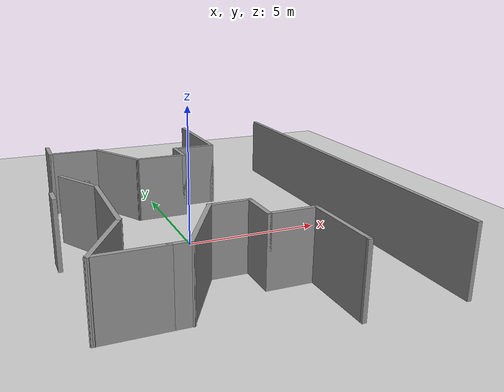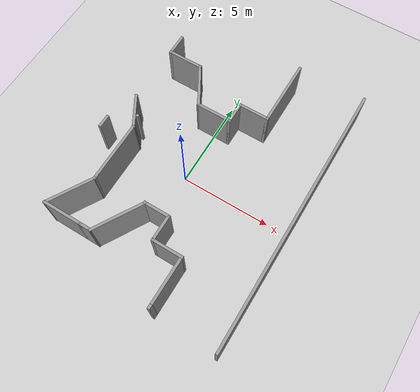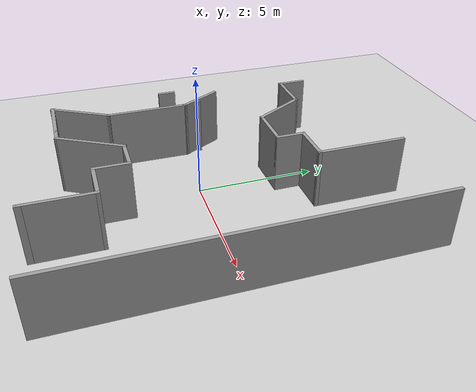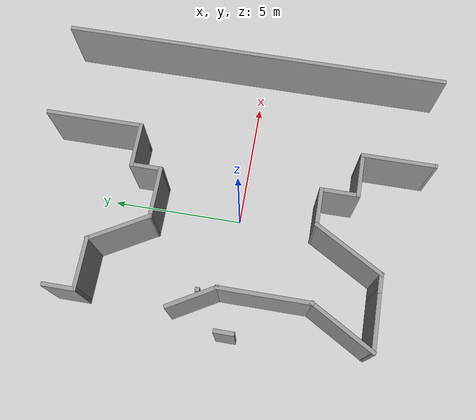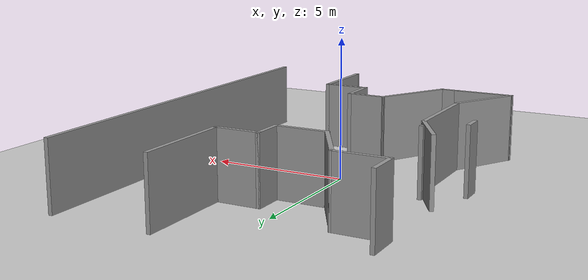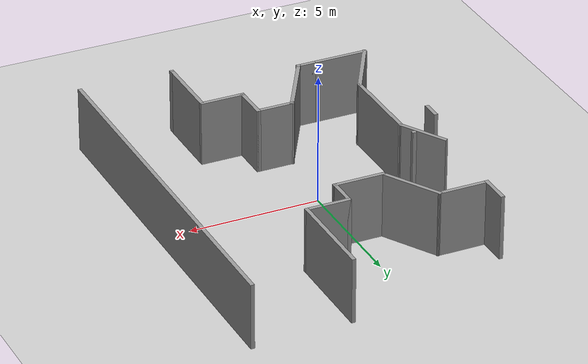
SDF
<sdf version="1.7">
 <world name="default">
  <model name="ground_plane">
   <static>1</static>
   <link name="link">
    <collision name="collision">
     <geometry><plane><normal>0 0 1</normal><size>100 100</size></plane></geometry>
     <surface>
      <contact><collide_bitmask>65535</collide_bitmask></contact>
      <friction><ode><mu>100</mu><mu2>50</mu2></ode></friction>
     </surface>
    </collision>
    <visual name="visual">
     <cast_shadows>0</cast_shadows>
     <geometry><plane><normal>0 0 1</normal><size>100 100</size></plane></geometry>
     <material>
      <script><uri>file://media/materials/scripts/gazebo.material</uri><name>Gazebo/Grey</name></script>
     </material>
    </visual>
   </link>
  </model>
  <model name="cubot">
   <link name="Wall_123">
    <pose>13.925 -0.04968 0 0 0 -1.5708</pose>
    <visual name="Wall_123_Visual">
     <pose>0 0 1.25 0 -0 0</pose>
     <geometry><box><size>15 0.15 2.5</size></box></geometry>
     <material>
      <script><uri>file://media/materials/scripts/gazebo.material</uri><name>Gazebo/Grey</name></script>
      <ambient>1 1 1 1</ambient>
      <shader type="pixel"/>
     </material>
     <meta><layer>0</layer></meta>
    </visual>
    <collision name="Wall_123_Collision">
     <pose>0 0 1.25 0 -0 0</pose>
     <geometry><box><size>15 0.15 2.5</size></box></geometry>
     <surface>
      <friction>
       <ode><mu>1</mu><mu2>1</mu2><fdir1>0 0 0</fdir1><slip1>0</slip1><slip2>0</slip2></ode>
       <torsional>
        <coefficient>1</coefficient>
        <patch_radius>0</patch_radius>
        <surface_radius>0</surface_radius>
        <use_patch_radius>1</use_patch_radius>
        <ode><slip>0</slip></ode>
       </torsional>
      </friction>
      <bounce><restitution_coefficient>0</restitution_coefficient><threshold>1e+06</threshold></bounce>
      <contact>
       <collide_without_contact>0</collide_without_contact>
       <collide_without_contact_bitmask>1</collide_without_contact_bitmask>
       <collide_bitmask>1</collide_bitmask>
       <ode>
        <soft_cfm>0</soft_cfm>
        <soft_erp>0.2</soft_erp>
        <kp>1e+13</kp>
        <kd>1</kd>
        <max_vel>0.01</max_vel>
        <min_depth>0</min_depth>
       </ode>
       <bullet>
        <split_impulse>1</split_impulse>
        <split_impulse_penetration_threshold>-0.01</split_impulse_penetration_threshold>
        <soft_cfm>0</soft_cfm>
        <soft_erp>0.2</soft_erp>
        <kp>1e+13</kp>
        <kd>1</kd>
       </bullet>
      </contact>
     </surface>
    </collision>
   </link>
   <link name="Wall_158">
    <pose>3.68935 5.22468 0 0 0 -1.5708</pose>
    <visual name="Wall_158_Visual">
     <pose>0 0 1.25 0 -0 0</pose>
     <geometry><box><size>1.25 0.15 2.5</size></box></geometry>
     <material>
      <script><uri>file://media/materials/scripts/gazebo.material</uri><name>Gazebo/Grey</name></script>
      <ambient>1 1 1 1</ambient>
      <shader type="pixel"/>
     </material>
     <meta><layer>0</layer></meta>
    </visual>
    <collision name="Wall_158_Collision">
     <pose>0 0 1.25 0 -0 0</pose>
     <geometry><box><size>1.25 0.15 2.5</size></box></geometry>
     <surface>
      <friction>
       <ode><mu>1</mu><mu2>1</mu2><fdir1>0 0 0</fdir1><slip1>0</slip1><slip2>0</slip2></ode>
       <torsional>
        <coefficient>1</coefficient>
        <patch_radius>0</patch_radius>
        <surface_radius>0</surface_radius>
        <use_patch_radius>1</use_patch_radius>
        <ode><slip>0</slip></ode>
       </torsional>
      </friction>
      <bounce><restitution_coefficient>0</restitution_coefficient><threshold>1e+06</threshold></bounce>
      <contact>
       <collide_without_contact>0</collide_without_contact>
       <collide_without_contact_bitmask>1</collide_without_contact_bitmask>
       <collide_bitmask>1</collide_bitmask>
       <ode>
        <soft_cfm>0</soft_cfm>
        <soft_erp>0.2</soft_erp>
        <kp>1e+13</kp>
        <kd>1</kd>
        <max_vel>0.01</max_vel>
        <min_depth>0</min_depth>
       </ode>
       <bullet>
        <split_impulse>1</split_impulse>
        <split_impulse_penetration_threshold>-0.01</split_impulse_penetration_threshold>
        <soft_cfm>0</soft_cfm>
        <soft_erp>0.2</soft_erp>
        <kp>1e+13</kp>
        <kd>1</kd>
       </bullet>
      </contact>
     </surface>
    </collision>
   </link>
   <link name="Wall_159">
    <pose>4.61435 4.67468 0 0 -0 0</pose>
    <visual name="Wall_159_Visual">
     <pose>0 0 1.25 0 -0 0</pose>
     <geometry><box><size>2 0.15 2.5</size></box></geometry>
     <material>
      <script><uri>file://media/materials/scripts/gazebo.material</uri><name>Gazebo/Grey</name></script>
      <ambient>1 1 1 1</ambient>
      <shader type="pixel"/>
     </material>
     <meta><layer>0</layer></meta>
    </visual>
    <collision name="Wall_159_Collision">
     <pose>0 0 1.25 0 -0 0</pose>
     <geometry><box><size>2 0.15 2.5</size></box></geometry>
     <surface>
      <friction>
       <ode><mu>1</mu><mu2>1</mu2><fdir1>0 0 0</fdir1><slip1>0</slip1><slip2>0</slip2></ode>
       <torsional>
        <coefficient>1</coefficient>
        <patch_radius>0</patch_radius>
        <surface_radius>0</surface_radius>
        <use_patch_radius>1</use_patch_radius>
        <ode><slip>0</slip></ode>
       </torsional>
      </friction>
      <bounce><restitution_coefficient>0</restitution_coefficient><threshold>1e+06</threshold></bounce>
      <contact>
       <collide_without_contact>0</collide_without_contact>
       <collide_without_contact_bitmask>1</collide_without_contact_bitmask>
       <collide_bitmask>1</collide_bitmask>
       <ode>
        <soft_cfm>0</soft_cfm>
        <soft_erp>0.2</soft_erp>
        <kp>1e+13</kp>
        <kd>1</kd>
        <max_vel>0.01</max_vel>
        <min_depth>0</min_depth>
       </ode>
       <bullet>
        <split_impulse>1</split_impulse>
        <split_impulse_penetration_threshold>-0.01</split_impulse_penetration_threshold>
        <soft_cfm>0</soft_cfm>
        <soft_erp>0.2</soft_erp>
        <kp>1e+13</kp>
        <kd>1</kd>
       </bullet>
      </contact>
     </surface>
    </collision>
   </link>
   <link name="Wall_160">
    <pose>6.12685 3.6571 0 0 0 -1.0472</pose>
    <visual name="Wall_160_Visual">
     <pose>0 0 1.25 0 -0 0</pose>
     <geometry><box><size>2.5 0.15 2.5</size></box></geometry>
     <material>
      <script><uri>file://media/materials/scripts/gazebo.material</uri><name>Gazebo/Grey</name></script>
      <ambient>1 1 1 1</ambient>
      <shader type="pixel"/>
     </material>
     <meta><layer>0</layer></meta>
    </visual>
    <collision name="Wall_160_Collision">
     <pose>0 0 1.25 0 -0 0</pose>
     <geometry><box><size>2.5 0.15 2.5</size></box></geometry>
     <surface>
      <friction>
       <ode><mu>1</mu><mu2>1</mu2><fdir1>0 0 0</fdir1><slip1>0</slip1><slip2>0</slip2></ode>
       <torsional>
        <coefficient>1</coefficient>
        <patch_radius>0</patch_radius>
        <surface_radius>0</surface_radius>
        <use_patch_radius>1</use_patch_radius>
        <ode><slip>0</slip></ode>
       </torsional>
      </friction>
      <bounce><restitution_coefficient>0</restitution_coefficient><threshold>1e+06</threshold></bounce>
      <contact>
       <collide_without_contact>0</collide_without_contact>
       <collide_without_contact_bitmask>1</collide_without_contact_bitmask>
       <collide_bitmask>1</collide_bitmask>
       <ode>
        <soft_cfm>0</soft_cfm>
        <soft_erp>0.2</soft_erp>
        <kp>1e+13</kp>
        <kd>1</kd>
        <max_vel>0.01</max_vel>
        <min_depth>0</min_depth>
       </ode>
       <bullet>
        <split_impulse>1</split_impulse>
        <split_impulse_penetration_threshold>-0.01</split_impulse_penetration_threshold>
        <soft_cfm>0</soft_cfm>
        <soft_erp>0.2</soft_erp>
        <kp>1e+13</kp>
        <kd>1</kd>
       </bullet>
      </contact>
     </surface>
    </collision>
   </link>
   <link name="Wall_161">
    <pose>7.63935 2.63952 0 0 -0 0</pose>
    <visual name="Wall_161_Visual">
     <pose>0 0 1.25 0 -0 0</pose>
     <geometry><box><size>2 0.15 2.5</size></box></geometry>
     <material>
      <script><uri>file://media/materials/scripts/gazebo.material</uri><name>Gazebo/Grey</name></script>
      <ambient>1 1 1 1</ambient>
      <shader type="pixel"/>
     </material>
     <meta><layer>0</layer></meta>
    </visual>
    <collision name="Wall_161_Collision">
     <pose>0 0 1.25 0 -0 0</pose>
     <geometry><box><size>2 0.15 2.5</size></box></geometry>
     <surface>
      <friction>
       <ode><mu>1</mu><mu2>1</mu2><fdir1>0 0 0</fdir1><slip1>0</slip1><slip2>0</slip2></ode>
       <torsional>
        <coefficient>1</coefficient>
        <patch_radius>0</patch_radius>
        <surface_radius>0</surface_radius>
        <use_patch_radius>1</use_patch_radius>
        <ode><slip>0</slip></ode>
       </torsional>
      </friction>
      <bounce><restitution_coefficient>0</restitution_coefficient><threshold>1e+06</threshold></bounce>
      <contact>
       <collide_without_contact>0</collide_without_contact>
       <collide_without_contact_bitmask>1</collide_without_contact_bitmask>
       <collide_bitmask>1</collide_bitmask>
       <ode>
        <soft_cfm>0</soft_cfm>
        <soft_erp>0.2</soft_erp>
        <kp>1e+13</kp>
        <kd>1</kd>
        <max_vel>0.01</max_vel>
        <min_depth>0</min_depth>
       </ode>
       <bullet>
        <split_impulse>1</split_impulse>
        <split_impulse_penetration_threshold>-0.01</split_impulse_penetration_threshold>
        <soft_cfm>0</soft_cfm>
        <soft_erp>0.2</soft_erp>
        <kp>1e+13</kp>
        <kd>1</kd>
       </bullet>
      </contact>
     </surface>
    </collision>
   </link>
   <link name="Wall_162">
    <pose>8.56435 3.18952 0 0 -0 1.5708</pose>
    <visual name="Wall_162_Visual">
     <pose>0 0 1.25 0 -0 0</pose>
     <geometry><box><size>1.25 0.15 2.5</size></box></geometry>
     <material>
      <script><uri>file://media/materials/scripts/gazebo.material</uri><name>Gazebo/Grey</name></script>
      <ambient>1 1 1 1</ambient>
      <shader type="pixel"/>
     </material>
     <meta><layer>0</layer></meta>
    </visual>
    <collision name="Wall_162_Collision">
     <pose>0 0 1.25 0 -0 0</pose>
     <geometry><box><size>1.25 0.15 2.5</size></box></geometry>
     <surface>
      <friction>
       <ode><mu>1</mu><mu2>1</mu2><fdir1>0 0 0</fdir1><slip1>0</slip1><slip2>0</slip2></ode>
       <torsional>
        <coefficient>1</coefficient>
        <patch_radius>0</patch_radius>
        <surface_radius>0</surface_radius>
        <use_patch_radius>1</use_patch_radius>
        <ode><slip>0</slip></ode>
       </torsional>
      </friction>
      <bounce><restitution_coefficient>0</restitution_coefficient><threshold>1e+06</threshold></bounce>
      <contact>
       <collide_without_contact>0</collide_without_contact>
       <collide_without_contact_bitmask>1</collide_without_contact_bitmask>
       <collide_bitmask>1</collide_bitmask>
       <ode>
        <soft_cfm>0</soft_cfm>
        <soft_erp>0.2</soft_erp>
        <kp>1e+13</kp>
        <kd>1</kd>
        <max_vel>0.01</max_vel>
        <min_depth>0</min_depth>
       </ode>
       <bullet>
        <split_impulse>1</split_impulse>
        <split_impulse_penetration_threshold>-0.01</split_impulse_penetration_threshold>
        <soft_cfm>0</soft_cfm>
        <soft_erp>0.2</soft_erp>
        <kp>1e+13</kp>
        <kd>1</kd>
       </bullet>
      </contact>
     </surface>
    </collision>
   </link>
   <link name="Wall_163">
    <pose>9.36435 3.73952 0 0 -0 0</pose>
    <visual name="Wall_163_Visual">
     <pose>0 0 1.25 0 -0 0</pose>
     <geometry><box><size>1.75 0.15 2.5</size></box></geometry>
     <material>
      <script><uri>file://media/materials/scripts/gazebo.material</uri><name>Gazebo/Grey</name></script>
      <ambient>1 1 1 1</ambient>
      <shader type="pixel"/>
     </material>
     <meta><layer>0</layer></meta>
    </visual>
    <collision name="Wall_163_Collision">
     <pose>0 0 1.25 0 -0 0</pose>
     <geometry><box><size>1.75 0.15 2.5</size></box></geometry>
     <surface>
      <friction>
       <ode><mu>1</mu><mu2>1</mu2><fdir1>0 0 0</fdir1><slip1>0</slip1><slip2>0</slip2></ode>
       <torsional>
        <coefficient>1</coefficient>
        <patch_radius>0</patch_radius>
        <surface_radius>0</surface_radius>
        <use_patch_radius>1</use_patch_radius>
        <ode><slip>0</slip></ode>
       </torsional>
      </friction>
      <bounce><restitution_coefficient>0</restitution_coefficient><threshold>1e+06</threshold></bounce>
      <contact>
       <collide_without_contact>0</collide_without_contact>
       <collide_without_contact_bitmask>1</collide_without_contact_bitmask>
       <collide_bitmask>1</collide_bitmask>
       <ode>
        <soft_cfm>0</soft_cfm>
        <soft_erp>0.2</soft_erp>
        <kp>1e+13</kp>
        <kd>1</kd>
        <max_vel>0.01</max_vel>
        <min_depth>0</min_depth>
       </ode>
       <bullet>
        <split_impulse>1</split_impulse>
        <split_impulse_penetration_threshold>-0.01</split_impulse_penetration_threshold>
        <soft_cfm>0</soft_cfm>
        <soft_erp>0.2</soft_erp>
        <kp>1e+13</kp>
        <kd>1</kd>
       </bullet>
      </contact>
     </surface>
    </collision>
   </link>
   <link name="Wall_164">
    <pose>10.1643 5.53952 0 0 -0 1.5708</pose>
    <visual name="Wall_164_Visual">
     <pose>0 0 1.25 0 -0 0</pose>
     <geometry><box><size>3.75 0.15 2.5</size></box></geometry>
     <material>
      <script><uri>file://media/materials/scripts/gazebo.material</uri><name>Gazebo/Grey</name></script>
      <ambient>1 1 1 1</ambient>
      <shader type="pixel"/>
     </material>
     <meta><layer>0</layer></meta>
    </visual>
    <collision name="Wall_164_Collision">
     <pose>0 0 1.25 0 -0 0</pose>
     <geometry><box><size>3.75 0.15 2.5</size></box></geometry>
     <surface>
      <friction>
       <ode><mu>1</mu><mu2>1</mu2><fdir1>0 0 0</fdir1><slip1>0</slip1><slip2>0</slip2></ode>
       <torsional>
        <coefficient>1</coefficient>
        <patch_radius>0</patch_radius>
        <surface_radius>0</surface_radius>
        <use_patch_radius>1</use_patch_radius>
        <ode><slip>0</slip></ode>
       </torsional>
      </friction>
      <bounce><restitution_coefficient>0</restitution_coefficient><threshold>1e+06</threshold></bounce>
      <contact>
       <collide_without_contact>0</collide_without_contact>
       <collide_without_contact_bitmask>1</collide_without_contact_bitmask>
       <collide_bitmask>1</collide_bitmask>
       <ode>
        <soft_cfm>0</soft_cfm>
        <soft_erp>0.2</soft_erp>
        <kp>1e+13</kp>
        <kd>1</kd>
        <max_vel>0.01</max_vel>
        <min_depth>0</min_depth>
       </ode>
       <bullet>
        <split_impulse>1</split_impulse>
        <split_impulse_penetration_threshold>-0.01</split_impulse_penetration_threshold>
        <soft_cfm>0</soft_cfm>
        <soft_erp>0.2</soft_erp>
        <kp>1e+13</kp>
        <kd>1</kd>
       </bullet>
      </contact>
     </surface>
    </collision>
   </link>
   <link name="Wall_167">
    <pose>4.38759 0.45089 0 0 -0 0</pose>
    <visual name="Wall_167_Visual">
     <pose>0 0 1.25 0 -0 0</pose>
     <geometry><box><size>0.15 0.15 2.5</size></box></geometry>
     <material>
      <script><uri>file://media/materials/scripts/gazebo.material</uri><name>Gazebo/Grey</name></script>
      <ambient>1 1 1 1</ambient>
      <shader type="pixel"/>
     </material>
     <meta><layer>0</layer></meta>
    </visual>
    <collision name="Wall_167_Collision">
     <pose>0 0 1.25 0 -0 0</pose>
     <geometry><box><size>0.15 0.15 2.5</size></box></geometry>
     <surface>
      <friction>
       <ode><mu>1</mu><mu2>1</mu2><fdir1>0 0 0</fdir1><slip1>0</slip1><slip2>0</slip2></ode>
       <torsional>
        <coefficient>1</coefficient>
        <patch_radius>0</patch_radius>
        <surface_radius>0</surface_radius>
        <use_patch_radius>1</use_patch_radius>
        <ode><slip>0</slip></ode>
       </torsional>
      </friction>
      <bounce><restitution_coefficient>0</restitution_coefficient><threshold>1e+06</threshold></bounce>
      <contact>
       <collide_without_contact>0</collide_without_contact>
       <collide_without_contact_bitmask>1</collide_without_contact_bitmask>
       <collide_bitmask>1</collide_bitmask>
       <ode>
        <soft_cfm>0</soft_cfm>
        <soft_erp>0.2</soft_erp>
        <kp>1e+13</kp>
        <kd>1</kd>
        <max_vel>0.01</max_vel>
        <min_depth>0</min_depth>
       </ode>
       <bullet>
        <split_impulse>1</split_impulse>
        <split_impulse_penetration_threshold>-0.01</split_impulse_penetration_threshold>
        <soft_cfm>0</soft_cfm>
        <soft_erp>0.2</soft_erp>
        <kp>1e+13</kp>
        <kd>1</kd>
       </bullet>
      </contact>
     </surface>
    </collision>
   </link>
   <link name="Wall_168">
    <pose>4.38759 0.45089 0 0 -0 0</pose>
    <visual name="Wall_168_Visual">
     <pose>0 0 1.25 0 -0 0</pose>
     <geometry><box><size>0.15 0.15 2.5</size></box></geometry>
     <material>
      <script><uri>file://media/materials/scripts/gazebo.material</uri><name>Gazebo/Grey</name></script>
      <ambient>1 1 1 1</ambient>
      <shader type="pixel"/>
     </material>
     <meta><layer>0</layer></meta>
    </visual>
    <collision name="Wall_168_Collision">
     <pose>0 0 1.25 0 -0 0</pose>
     <geometry><box><size>0.15 0.15 2.5</size></box></geometry>
     <surface>
      <friction>
       <ode><mu>1</mu><mu2>1</mu2><fdir1>0 0 0</fdir1><slip1>0</slip1><slip2>0</slip2></ode>
       <torsional>
        <coefficient>1</coefficient>
        <patch_radius>0</patch_radius>
        <surface_radius>0</surface_radius>
        <use_patch_radius>1</use_patch_radius>
        <ode><slip>0</slip></ode>
       </torsional>
      </friction>
      <bounce><restitution_coefficient>0</restitution_coefficient><threshold>1e+06</threshold></bounce>
      <contact>
       <collide_without_contact>0</collide_without_contact>
       <collide_without_contact_bitmask>1</collide_without_contact_bitmask>
       <collide_bitmask>1</collide_bitmask>
       <ode>
        <soft_cfm>0</soft_cfm>
        <soft_erp>0.2</soft_erp>
        <kp>1e+13</kp>
        <kd>1</kd>
        <max_vel>0.01</max_vel>
        <min_depth>0</min_depth>
       </ode>
       <bullet>
        <split_impulse>1</split_impulse>
        <split_impulse_penetration_threshold>-0.01</split_impulse_penetration_threshold>
        <soft_cfm>0</soft_cfm>
        <soft_erp>0.2</soft_erp>
        <kp>1e+13</kp>
        <kd>1</kd>
       </bullet>
      </contact>
     </surface>
    </collision>
   </link>
   <link name="Wall_171">
    <pose>3.09113 -0.716259 0 0 -0 1.5708</pose>
    <visual name="Wall_171_Visual">
     <pose>0 0 1.25 0 -0 0</pose>
     <geometry><box><size>0.75 0.15 2.5</size></box></geometry>
     <material>
      <script><uri>file://media/materials/scripts/gazebo.material</uri><name>Gazebo/Grey</name></script>
      <ambient>1 1 1 1</ambient>
      <shader type="pixel"/>
     </material>
     <meta><layer>0</layer></meta>
    </visual>
    <collision name="Wall_171_Collision">
     <pose>0 0 1.25 0 -0 0</pose>
     <geometry><box><size>0.75 0.15 2.5</size></box></geometry>
     <surface>
      <friction>
       <ode><mu>1</mu><mu2>1</mu2><fdir1>0 0 0</fdir1><slip1>0</slip1><slip2>0</slip2></ode>
       <torsional>
        <coefficient>1</coefficient>
        <patch_radius>0</patch_radius>
        <surface_radius>0</surface_radius>
        <use_patch_radius>1</use_patch_radius>
        <ode><slip>0</slip></ode>
       </torsional>
      </friction>
      <bounce><restitution_coefficient>0</restitution_coefficient><threshold>1e+06</threshold></bounce>
      <contact>
       <collide_without_contact>0</collide_without_contact>
       <collide_without_contact_bitmask>1</collide_without_contact_bitmask>
       <collide_bitmask>1</collide_bitmask>
       <ode>
        <soft_cfm>0</soft_cfm>
        <soft_erp>0.2</soft_erp>
        <kp>1e+13</kp>
        <kd>1</kd>
        <max_vel>0.01</max_vel>
        <min_depth>0</min_depth>
       </ode>
       <bullet>
        <split_impulse>1</split_impulse>
        <split_impulse_penetration_threshold>-0.01</split_impulse_penetration_threshold>
        <soft_cfm>0</soft_cfm>
        <soft_erp>0.2</soft_erp>
        <kp>1e+13</kp>
        <kd>1</kd>
       </bullet>
      </contact>
     </surface>
    </collision>
   </link>
   <link name="Wall_174">
    <pose>4.10363 0.601321 0 0 0 -1.0472</pose>
    <visual name="Wall_174_Visual">
     <pose>0 0 1.25 0 -0 0</pose>
     <geometry><box><size>2 0.15 2.5</size></box></geometry>
     <material>
      <script><uri>file://media/materials/scripts/gazebo.material</uri><name>Gazebo/Grey</name></script>
      <ambient>1 1 1 1</ambient>
      <shader type="pixel"/>
     </material>
     <meta><layer>0</layer></meta>
    </visual>
    <collision name="Wall_174_Collision">
     <pose>0 0 1.25 0 -0 0</pose>
     <geometry><box><size>2 0.15 2.5</size></box></geometry>
     <surface>
      <friction>
       <ode><mu>1</mu><mu2>1</mu2><fdir1>0 0 0</fdir1><slip1>0</slip1><slip2>0</slip2></ode>
       <torsional>
        <coefficient>1</coefficient>
        <patch_radius>0</patch_radius>
        <surface_radius>0</surface_radius>
        <use_patch_radius>1</use_patch_radius>
        <ode><slip>0</slip></ode>
       </torsional>
      </friction>
      <bounce><restitution_coefficient>0</restitution_coefficient><threshold>1e+06</threshold></bounce>
      <contact>
       <collide_without_contact>0</collide_without_contact>
       <collide_without_contact_bitmask>1</collide_without_contact_bitmask>
       <collide_bitmask>1</collide_bitmask>
       <ode>
        <soft_cfm>0</soft_cfm>
        <soft_erp>0.2</soft_erp>
        <kp>1e+13</kp>
        <kd>1</kd>
        <max_vel>0.01</max_vel>
        <min_depth>0</min_depth>
       </ode>
       <bullet>
        <split_impulse>1</split_impulse>
        <split_impulse_penetration_threshold>-0.01</split_impulse_penetration_threshold>
        <soft_cfm>0</soft_cfm>
        <soft_erp>0.2</soft_erp>
        <kp>1e+13</kp>
        <kd>1</kd>
       </bullet>
      </contact>
     </surface>
    </collision>
   </link>
   <link name="Wall_175">
    <pose>4.56613 -1.87475 0 0 0 -1.5708</pose>
    <visual name="Wall_175_Visual">
     <pose>0 0 1.25 0 -0 0</pose>
     <geometry><box><size>3.5 0.15 2.5</size></box></geometry>
     <material>
      <script><uri>file://media/materials/scripts/gazebo.material</uri><name>Gazebo/Grey</name></script>
      <ambient>1 1 1 1</ambient>
      <shader type="pixel"/>
     </material>
     <meta><layer>0</layer></meta>
    </visual>
    <collision name="Wall_175_Collision">
     <pose>0 0 1.25 0 -0 0</pose>
     <geometry><box><size>3.5 0.15 2.5</size></box></geometry>
     <surface>
      <friction>
       <ode><mu>1</mu><mu2>1</mu2><fdir1>0 0 0</fdir1><slip1>0</slip1><slip2>0</slip2></ode>
       <torsional>
        <coefficient>1</coefficient>
        <patch_radius>0</patch_radius>
        <surface_radius>0</surface_radius>
        <use_patch_radius>1</use_patch_radius>
        <ode><slip>0</slip></ode>
       </torsional>
      </friction>
      <bounce><restitution_coefficient>0</restitution_coefficient><threshold>1e+06</threshold></bounce>
      <contact>
       <collide_without_contact>0</collide_without_contact>
       <collide_without_contact_bitmask>1</collide_without_contact_bitmask>
       <collide_bitmask>1</collide_bitmask>
       <ode>
        <soft_cfm>0</soft_cfm>
        <soft_erp>0.2</soft_erp>
        <kp>1e+13</kp>
        <kd>1</kd>
        <max_vel>0.01</max_vel>
        <min_depth>0</min_depth>
       </ode>
       <bullet>
        <split_impulse>1</split_impulse>
        <split_impulse_penetration_threshold>-0.01</split_impulse_penetration_threshold>
        <soft_cfm>0</soft_cfm>
        <soft_erp>0.2</soft_erp>
        <kp>1e+13</kp>
        <kd>1</kd>
       </bullet>
      </contact>
     </surface>
    </collision>
   </link>
   <link name="Wall_176">
    <pose>3.91613 -4.67558 0 0 0 -2.0944</pose>
    <visual name="Wall_176_Visual">
     <pose>0 0 1.25 0 -0 0</pose>
     <geometry><box><size>2.75 0.15 2.5</size></box></geometry>
     <material>
      <script><uri>file://media/materials/scripts/gazebo.material</uri><name>Gazebo/Grey</name></script>
      <ambient>1 1 1 1</ambient>
      <shader type="pixel"/>
     </material>
     <meta><layer>0</layer></meta>
    </visual>
    <collision name="Wall_176_Collision">
     <pose>0 0 1.25 0 -0 0</pose>
     <geometry><box><size>2.75 0.15 2.5</size></box></geometry>
     <surface>
      <friction>
       <ode><mu>1</mu><mu2>1</mu2><fdir1>0 0 0</fdir1><slip1>0</slip1><slip2>0</slip2></ode>
       <torsional>
        <coefficient>1</coefficient>
        <patch_radius>0</patch_radius>
        <surface_radius>0</surface_radius>
        <use_patch_radius>1</use_patch_radius>
        <ode><slip>0</slip></ode>
       </torsional>
      </friction>
      <bounce><restitution_coefficient>0</restitution_coefficient><threshold>1e+06</threshold></bounce>
      <contact>
       <collide_without_contact>0</collide_without_contact>
       <collide_without_contact_bitmask>1</collide_without_contact_bitmask>
       <collide_bitmask>1</collide_bitmask>
       <ode>
        <soft_cfm>0</soft_cfm>
        <soft_erp>0.2</soft_erp>
        <kp>1e+13</kp>
        <kd>1</kd>
        <max_vel>0.01</max_vel>
        <min_depth>0</min_depth>
       </ode>
       <bullet>
        <split_impulse>1</split_impulse>
        <split_impulse_penetration_threshold>-0.01</split_impulse_penetration_threshold>
        <soft_cfm>0</soft_cfm>
        <soft_erp>0.2</soft_erp>
        <kp>1e+13</kp>
        <kd>1</kd>
       </bullet>
      </contact>
     </surface>
    </collision>
   </link>
   <link name="Wall_177">
    <pose>4.31613 -5.80142 0 0 -0 0</pose>
    <visual name="Wall_177_Visual">
     <pose>0 0 1.25 0 -0 0</pose>
     <geometry><box><size>2.25 0.15 2.5</size></box></geometry>
     <material>
      <script><uri>file://media/materials/scripts/gazebo.material</uri><name>Gazebo/Grey</name></script>
      <ambient>1 1 1 1</ambient>
      <shader type="pixel"/>
     </material>
     <meta><layer>0</layer></meta>
    </visual>
    <collision name="Wall_177_Collision">
     <pose>0 0 1.25 0 -0 0</pose>
     <geometry><box><size>2.25 0.15 2.5</size></box></geometry>
     <surface>
      <friction>
       <ode><mu>1</mu><mu2>1</mu2><fdir1>0 0 0</fdir1><slip1>0</slip1><slip2>0</slip2></ode>
       <torsional>
        <coefficient>1</coefficient>
        <patch_radius>0</patch_radius>
        <surface_radius>0</surface_radius>
        <use_patch_radius>1</use_patch_radius>
        <ode><slip>0</slip></ode>
       </torsional>
      </friction>
      <bounce><restitution_coefficient>0</restitution_coefficient><threshold>1e+06</threshold></bounce>
      <contact>
       <collide_without_contact>0</collide_without_contact>
       <collide_without_contact_bitmask>1</collide_without_contact_bitmask>
       <collide_bitmask>1</collide_bitmask>
       <ode>
        <soft_cfm>0</soft_cfm>
        <soft_erp>0.2</soft_erp>
        <kp>1e+13</kp>
        <kd>1</kd>
        <max_vel>0.01</max_vel>
        <min_depth>0</min_depth>
       </ode>
       <bullet>
        <split_impulse>1</split_impulse>
        <split_impulse_penetration_threshold>-0.01</split_impulse_penetration_threshold>
        <soft_cfm>0</soft_cfm>
        <soft_erp>0.2</soft_erp>
        <kp>1e+13</kp>
        <kd>1</kd>
       </bullet>
      </contact>
     </surface>
    </collision>
   </link>
   <link name="Wall_178">
    <pose>5.66613 -5.80142 0 0 -0 0</pose>
    <visual name="Wall_178_Visual">
     <pose>0 0 1.25 0 -0 0</pose>
     <geometry><box><size>0.75 0.15 2.5</size></box></geometry>
     <material>
      <script><uri>file://media/materials/scripts/gazebo.material</uri><name>Gazebo/Grey</name></script>
      <ambient>1 1 1 1</ambient>
      <shader type="pixel"/>
     </material>
     <meta><layer>0</layer></meta>
    </visual>
    <collision name="Wall_178_Collision">
     <pose>0 0 1.25 0 -0 0</pose>
     <geometry><box><size>0.75 0.15 2.5</size></box></geometry>
     <surface>
      <friction>
       <ode><mu>1</mu><mu2>1</mu2><fdir1>0 0 0</fdir1><slip1>0</slip1><slip2>0</slip2></ode>
       <torsional>
        <coefficient>1</coefficient>
        <patch_radius>0</patch_radius>
        <surface_radius>0</surface_radius>
        <use_patch_radius>1</use_patch_radius>
        <ode><slip>0</slip></ode>
       </torsional>
      </friction>
      <bounce><restitution_coefficient>0</restitution_coefficient><threshold>1e+06</threshold></bounce>
      <contact>
       <collide_without_contact>0</collide_without_contact>
       <collide_without_contact_bitmask>1</collide_without_contact_bitmask>
       <collide_bitmask>1</collide_bitmask>
       <ode>
        <soft_cfm>0</soft_cfm>
        <soft_erp>0.2</soft_erp>
        <kp>1e+13</kp>
        <kd>1</kd>
        <max_vel>0.01</max_vel>
        <min_depth>0</min_depth>
       </ode>
       <bullet>
        <split_impulse>1</split_impulse>
        <split_impulse_penetration_threshold>-0.01</split_impulse_penetration_threshold>
        <soft_cfm>0</soft_cfm>
        <soft_erp>0.2</soft_erp>
        <kp>1e+13</kp>
        <kd>1</kd>
       </bullet>
      </contact>
     </surface>
    </collision>
   </link>
   <link name="Wall_179">
    <pose>6.67863 -4.56733 0 0 -0 1.0472</pose>
    <visual name="Wall_179_Visual">
     <pose>0 0 1.25 0 -0 0</pose>
     <geometry><box><size>3 0.15 2.5</size></box></geometry>
     <material>
      <script><uri>file://media/materials/scripts/gazebo.material</uri><name>Gazebo/Grey</name></script>
      <ambient>1 1 1 1</ambient>
      <shader type="pixel"/>
     </material>
     <meta><layer>0</layer></meta>
    </visual>
    <collision name="Wall_179_Collision">
     <pose>0 0 1.25 0 -0 0</pose>
     <geometry><box><size>3 0.15 2.5</size></box></geometry>
     <surface>
      <friction>
       <ode><mu>1</mu><mu2>1</mu2><fdir1>0 0 0</fdir1><slip1>0</slip1><slip2>0</slip2></ode>
       <torsional>
        <coefficient>1</coefficient>
        <patch_radius>0</patch_radius>
        <surface_radius>0</surface_radius>
        <use_patch_radius>1</use_patch_radius>
        <ode><slip>0</slip></ode>
       </torsional>
      </friction>
      <bounce><restitution_coefficient>0</restitution_coefficient><threshold>1e+06</threshold></bounce>
      <contact>
       <collide_without_contact>0</collide_without_contact>
       <collide_without_contact_bitmask>1</collide_without_contact_bitmask>
       <collide_bitmask>1</collide_bitmask>
       <ode>
        <soft_cfm>0</soft_cfm>
        <soft_erp>0.2</soft_erp>
        <kp>1e+13</kp>
        <kd>1</kd>
        <max_vel>0.01</max_vel>
        <min_depth>0</min_depth>
       </ode>
       <bullet>
        <split_impulse>1</split_impulse>
        <split_impulse_penetration_threshold>-0.01</split_impulse_penetration_threshold>
        <soft_cfm>0</soft_cfm>
        <soft_erp>0.2</soft_erp>
        <kp>1e+13</kp>
        <kd>1</kd>
       </bullet>
      </contact>
     </surface>
    </collision>
   </link>
   <link name="Wall_180">
    <pose>8.06613 -3.33325 0 0 -0 0</pose>
    <visual name="Wall_180_Visual">
     <pose>0 0 1.25 0 -0 0</pose>
     <geometry><box><size>1.5 0.15 2.5</size></box></geometry>
     <material>
      <script><uri>file://media/materials/scripts/gazebo.material</uri><name>Gazebo/Grey</name></script>
      <ambient>1 1 1 1</ambient>
      <shader type="pixel"/>
     </material>
     <meta><layer>0</layer></meta>
    </visual>
    <collision name="Wall_180_Collision">
     <pose>0 0 1.25 0 -0 0</pose>
     <geometry><box><size>1.5 0.15 2.5</size></box></geometry>
     <surface>
      <friction>
       <ode><mu>1</mu><mu2>1</mu2><fdir1>0 0 0</fdir1><slip1>0</slip1><slip2>0</slip2></ode>
       <torsional>
        <coefficient>1</coefficient>
        <patch_radius>0</patch_radius>
        <surface_radius>0</surface_radius>
        <use_patch_radius>1</use_patch_radius>
        <ode><slip>0</slip></ode>
       </torsional>
      </friction>
      <bounce><restitution_coefficient>0</restitution_coefficient><threshold>1e+06</threshold></bounce>
      <contact>
       <collide_without_contact>0</collide_without_contact>
       <collide_without_contact_bitmask>1</collide_without_contact_bitmask>
       <collide_bitmask>1</collide_bitmask>
       <ode>
        <soft_cfm>0</soft_cfm>
        <soft_erp>0.2</soft_erp>
        <kp>1e+13</kp>
        <kd>1</kd>
        <max_vel>0.01</max_vel>
        <min_depth>0</min_depth>
       </ode>
       <bullet>
        <split_impulse>1</split_impulse>
        <split_impulse_penetration_threshold>-0.01</split_impulse_penetration_threshold>
        <soft_cfm>0</soft_cfm>
        <soft_erp>0.2</soft_erp>
        <kp>1e+13</kp>
        <kd>1</kd>
       </bullet>
      </contact>
     </surface>
    </collision>
   </link>
   <link name="Wall_181">
    <pose>8.74113 -4.00825 0 0 0 -1.5708</pose>
    <visual name="Wall_181_Visual">
     <pose>0 0 1.25 0 -0 0</pose>
     <geometry><box><size>1.5 0.15 2.5</size></box></geometry>
     <material>
      <script><uri>file://media/materials/scripts/gazebo.material</uri><name>Gazebo/Grey</name></script>
      <ambient>1 1 1 1</ambient>
      <shader type="pixel"/>
     </material>
     <meta><layer>0</layer></meta>
    </visual>
    <collision name="Wall_181_Collision">
     <pose>0 0 1.25 0 -0 0</pose>
     <geometry><box><size>1.5 0.15 2.5</size></box></geometry>
     <surface>
      <friction>
       <ode><mu>1</mu><mu2>1</mu2><fdir1>0 0 0</fdir1><slip1>0</slip1><slip2>0</slip2></ode>
       <torsional>
        <coefficient>1</coefficient>
        <patch_radius>0</patch_radius>
        <surface_radius>0</surface_radius>
        <use_patch_radius>1</use_patch_radius>
        <ode><slip>0</slip></ode>
       </torsional>
      </friction>
      <bounce><restitution_coefficient>0</restitution_coefficient><threshold>1e+06</threshold></bounce>
      <contact>
       <collide_without_contact>0</collide_without_contact>
       <collide_without_contact_bitmask>1</collide_without_contact_bitmask>
       <collide_bitmask>1</collide_bitmask>
       <ode>
        <soft_cfm>0</soft_cfm>
        <soft_erp>0.2</soft_erp>
        <kp>1e+13</kp>
        <kd>1</kd>
        <max_vel>0.01</max_vel>
        <min_depth>0</min_depth>
       </ode>
       <bullet>
        <split_impulse>1</split_impulse>
        <split_impulse_penetration_threshold>-0.01</split_impulse_penetration_threshold>
        <soft_cfm>0</soft_cfm>
        <soft_erp>0.2</soft_erp>
        <kp>1e+13</kp>
        <kd>1</kd>
       </bullet>
      </contact>
     </surface>
    </collision>
   </link>
   <link name="Wall_182">
    <pose>9.54113 -4.68325 0 0 -0 0</pose>
    <visual name="Wall_182_Visual">
     <pose>0 0 1.25 0 -0 0</pose>
     <geometry><box><size>1.75 0.15 2.5</size></box></geometry>
     <material>
      <script><uri>file://media/materials/scripts/gazebo.material</uri><name>Gazebo/Grey</name></script>
      <ambient>1 1 1 1</ambient>
      <shader type="pixel"/>
     </material>
     <meta><layer>0</layer></meta>
    </visual>
    <collision name="Wall_182_Collision">
     <pose>0 0 1.25 0 -0 0</pose>
     <geometry><box><size>1.75 0.15 2.5</size></box></geometry>
     <surface>
      <friction>
       <ode><mu>1</mu><mu2>1</mu2><fdir1>0 0 0</fdir1><slip1>0</slip1><slip2>0</slip2></ode>
       <torsional>
        <coefficient>1</coefficient>
        <patch_radius>0</patch_radius>
        <surface_radius>0</surface_radius>
        <use_patch_radius>1</use_patch_radius>
        <ode><slip>0</slip></ode>
       </torsional>
      </friction>
      <bounce><restitution_coefficient>0</restitution_coefficient><threshold>1e+06</threshold></bounce>
      <contact>
       <collide_without_contact>0</collide_without_contact>
       <collide_without_contact_bitmask>1</collide_without_contact_bitmask>
       <collide_bitmask>1</collide_bitmask>
       <ode>
        <soft_cfm>0</soft_cfm>
        <soft_erp>0.2</soft_erp>
        <kp>1e+13</kp>
        <kd>1</kd>
        <max_vel>0.01</max_vel>
        <min_depth>0</min_depth>
       </ode>
       <bullet>
        <split_impulse>1</split_impulse>
        <split_impulse_penetration_threshold>-0.01</split_impulse_penetration_threshold>
        <soft_cfm>0</soft_cfm>
        <soft_erp>0.2</soft_erp>
        <kp>1e+13</kp>
        <kd>1</kd>
       </bullet>
      </contact>
     </surface>
    </collision>
   </link>
   <link name="Wall_183">
    <pose>10.3411 -5.98325 0 0 0 -1.5708</pose>
    <visual name="Wall_183_Visual">
     <pose>0 0 1.25 0 -0 0</pose>
     <geometry><box><size>2.75 0.15 2.5</size></box></geometry>
     <material>
      <script><uri>file://media/materials/scripts/gazebo.material</uri><name>Gazebo/Grey</name></script>
      <ambient>1 1 1 1</ambient>
      <shader type="pixel"/>
     </material>
     <meta><layer>0</layer></meta>
    </visual>
    <collision name="Wall_183_Collision">
     <pose>0 0 1.25 0 -0 0</pose>
     <geometry><box><size>2.75 0.15 2.5</size></box></geometry>
     <surface>
      <friction>
       <ode><mu>1</mu><mu2>1</mu2><fdir1>0 0 0</fdir1><slip1>0</slip1><slip2>0</slip2></ode>
       <torsional>
        <coefficient>1</coefficient>
        <patch_radius>0</patch_radius>
        <surface_radius>0</surface_radius>
        <use_patch_radius>1</use_patch_radius>
        <ode><slip>0</slip></ode>
       </torsional>
      </friction>
      <bounce><restitution_coefficient>0</restitution_coefficient><threshold>1e+06</threshold></bounce>
      <contact>
       <collide_without_contact>0</collide_without_contact>
       <collide_without_contact_bitmask>1</collide_without_contact_bitmask>
       <collide_bitmask>1</collide_bitmask>
       <ode>
        <soft_cfm>0</soft_cfm>
        <soft_erp>0.2</soft_erp>
        <kp>1e+13</kp>
        <kd>1</kd>
        <max_vel>0.01</max_vel>
        <min_depth>0</min_depth>
       </ode>
       <bullet>
        <split_impulse>1</split_impulse>
        <split_impulse_penetration_threshold>-0.01</split_impulse_penetration_threshold>
        <soft_cfm>0</soft_cfm>
        <soft_erp>0.2</soft_erp>
        <kp>1e+13</kp>
        <kd>1</kd>
       </bullet>
      </contact>
     </surface>
    </collision>
   </link>
   <link name="Wall_184">
    <pose>10.3411 -7.33325 0 0 0 -1.5708</pose>
    <visual name="Wall_184_Visual">
     <pose>0 0 1.25 0 -0 0</pose>
     <geometry><box><size>0.25 0.15 2.5</size></box></geometry>
     <material>
      <script><uri>file://media/materials/scripts/gazebo.material</uri><name>Gazebo/Grey</name></script>
      <ambient>1 1 1 1</ambient>
      <shader type="pixel"/>
     </material>
     <meta><layer>0</layer></meta>
    </visual>
    <collision name="Wall_184_Collision">
     <pose>0 0 1.25 0 -0 0</pose>
     <geometry><box><size>0.25 0.15 2.5</size></box></geometry>
     <surface>
      <friction>
       <ode><mu>1</mu><mu2>1</mu2><fdir1>0 0 0</fdir1><slip1>0</slip1><slip2>0</slip2></ode>
       <torsional>
        <coefficient>1</coefficient>
        <patch_radius>0</patch_radius>
        <surface_radius>0</surface_radius>
        <use_patch_radius>1</use_patch_radius>
        <ode><slip>0</slip></ode>
       </torsional>
      </friction>
      <bounce><restitution_coefficient>0</restitution_coefficient><threshold>1e+06</threshold></bounce>
      <contact>
       <collide_without_contact>0</collide_without_contact>
       <collide_without_contact_bitmask>1</collide_without_contact_bitmask>
       <collide_bitmask>1</collide_bitmask>
       <ode>
        <soft_cfm>0</soft_cfm>
        <soft_erp>0.2</soft_erp>
        <kp>1e+13</kp>
        <kd>1</kd>
        <max_vel>0.01</max_vel>
        <min_depth>0</min_depth>
       </ode>
       <bullet>
        <split_impulse>1</split_impulse>
        <split_impulse_penetration_threshold>-0.01</split_impulse_penetration_threshold>
        <soft_cfm>0</soft_cfm>
        <soft_erp>0.2</soft_erp>
        <kp>1e+13</kp>
        <kd>1</kd>
       </bullet>
      </contact>
     </surface>
    </collision>
   </link>
   <static>1</static>
   <pose>-7.72706 0.447575 0 0 -0 0</pose>
  </model>
 </world>
</sdf>
